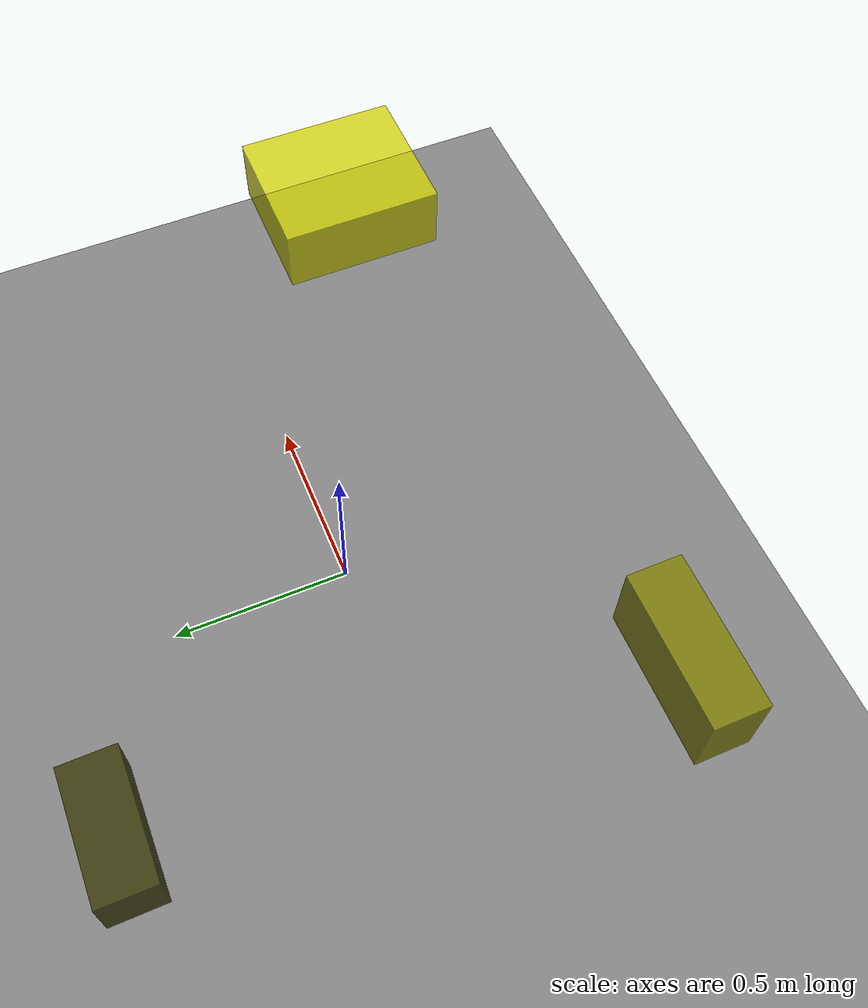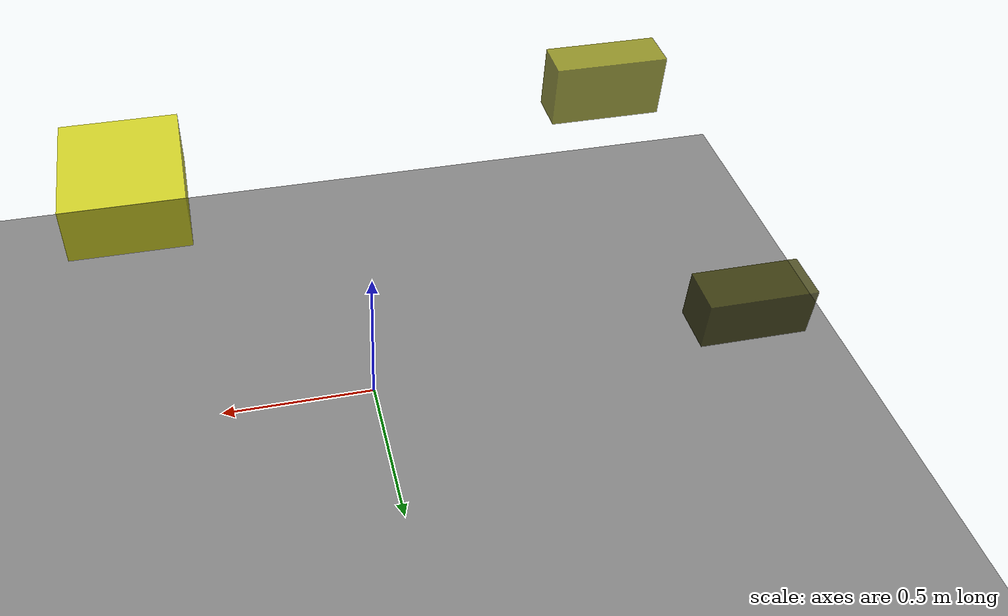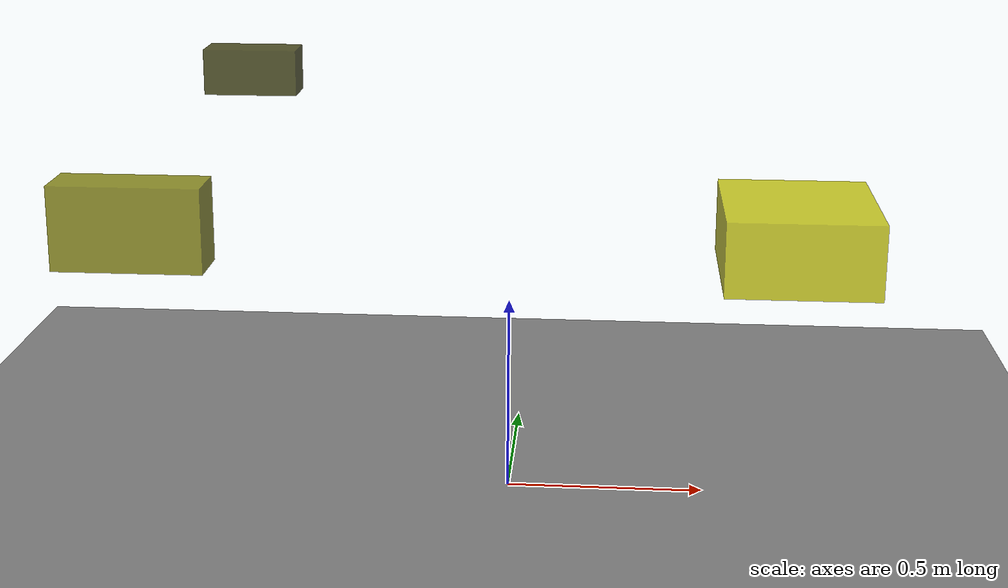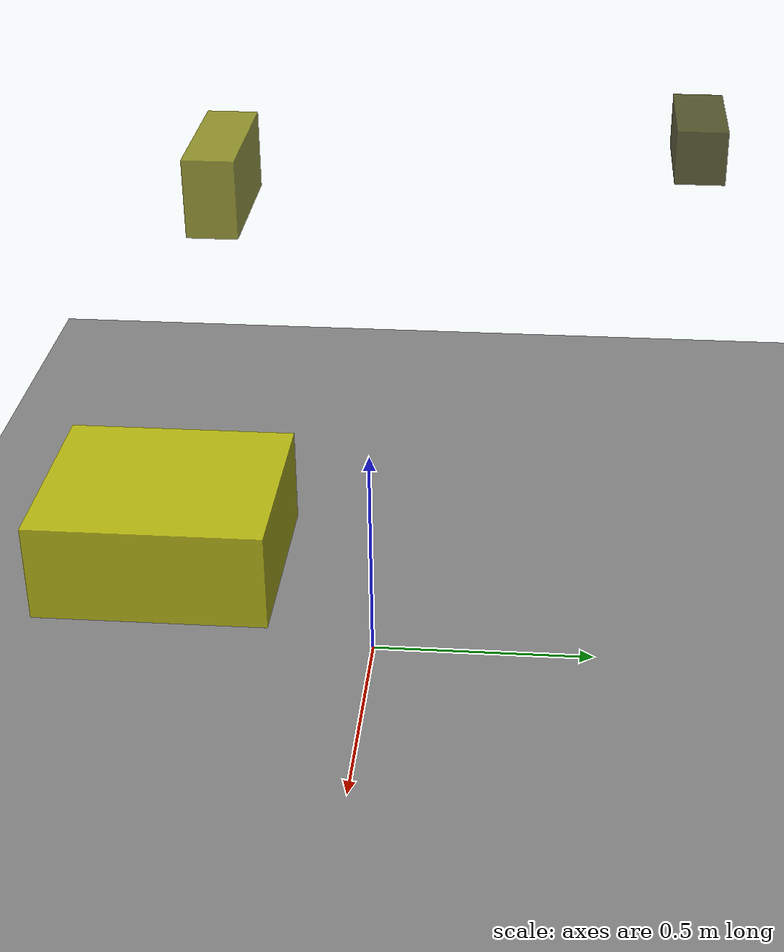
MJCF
<?xml version="1.0"?>
<mujoco model="obstacle_scene">
  <compiler angle="radian" coordinate="local"/>
  <option timestep="0.001" gravity="0 0 -9.81"/>

  <asset>
    <material name="obstacle_mat" rgba="0.8 0.8 0.0 0.8"/>
    <material name="ground_mat" rgba="0.5 0.5 0.5 1"/>
  </asset>

  <worldbody>
    <!-- Ground plane -->
    <geom name="ground" type="plane" size="3 3 0.1" material="ground_mat"/>

    <!-- Obstacles -->
    <body name="obstacle_0" pos="-0.780534 0.708415 0.950925">
      <geom name="obs_0" type="box" size="0.131946 0.058500 0.064208" rgba="0.2 0.2 0.0 0.8"/>
    </body>
    <body name="obstacle_1" pos="-0.836755 -0.451281 0.807139">
      <geom name="obs_1" type="box" size="0.175603 0.063596 0.099616" rgba="0.5 0.5 0.0 0.8"/>
    </body>
    <body name="obstacle_2" pos="0.682346 -0.275888 0.758527">
      <geom name="obs_2" type="box" size="0.175830 0.202289 0.087658" rgba="0.8 0.8 0.0 0.8"/>
    </body>
  </worldbody>
</mujoco>
